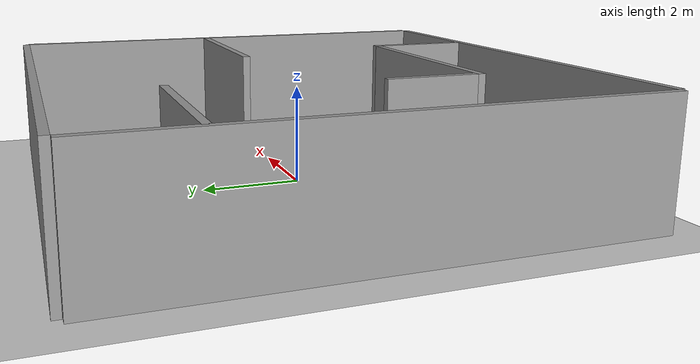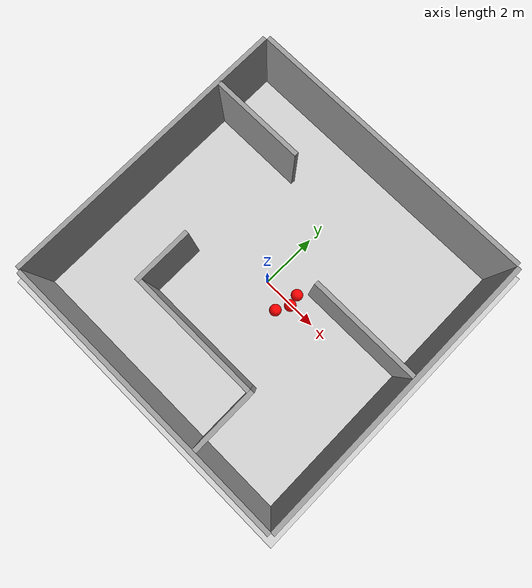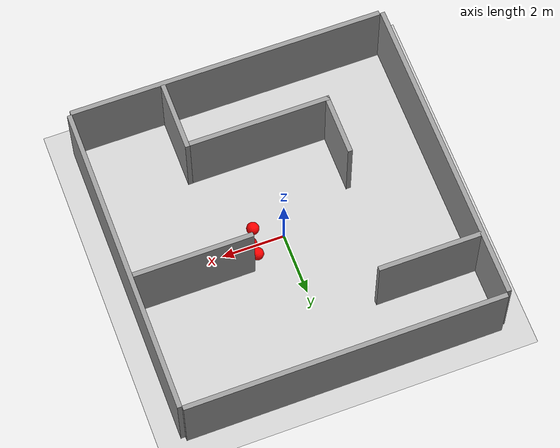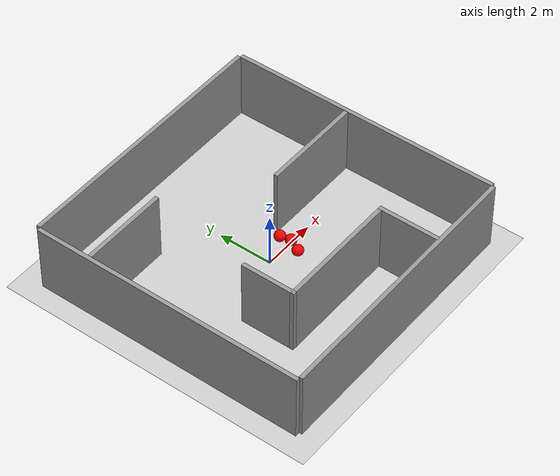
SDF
<sdf version="1.6">
 <world name="default">
  <model name="ground_plane">
   <static>1</static>
   <link name="link">
    <collision name="collision">
     <geometry><plane><normal>0 0 1</normal><size>100 100</size></plane></geometry>
     <surface><friction><ode><mu>100</mu><mu2>50</mu2></ode></friction></surface>
    </collision>
    <visual name="visual">
     <cast_shadows>0</cast_shadows>
     <geometry><plane><normal>0 0 1</normal><size>100 100</size></plane></geometry>
     <material>
      <script><uri>file://media/materials/scripts/gazebo.material</uri><name>Gazebo/Grey</name></script>
     </material>
    </visual>
   </link>
  </model>
  <light name="sun" type="directional">
   <pose>0 0 10 0 -0 0</pose>
   <diffuse>0.8 0.8 0.8 1</diffuse>
   <specular>0.1 0.1 0.1 1</specular>
   <attenuation>
    <range>1000</range>
    <constant>0.9</constant>
    <linear>0.01</linear>
    <quadratic>0.001</quadratic>
   </attenuation>
   <direction>-0.5 0.5 -1</direction>
  </light>
  <gravity>0 0 -9.8</gravity>
  <magnetic_field>6e-06 2.3e-05 -4.2e-05</magnetic_field>
  <atmosphere type="adiabatic"/>
  <physics name="default_physics" default="0" type="ode">
   <max_step_size>0.001</max_step_size>
   <real_time_factor>1</real_time_factor>
   <real_time_update_rate>1000</real_time_update_rate>
  </physics>
  <scene><ambient>0.4 0.4 0.4 1</ambient><background>0.7 0.7 0.7 1</background><shadows>1</shadows></scene>
  <spherical_coordinates>
   <surface_model>EARTH_WGS84</surface_model>
   <latitude_deg>0</latitude_deg>
   <longitude_deg>0</longitude_deg>
   <elevation>0</elevation>
   <heading_deg>0</heading_deg>
  </spherical_coordinates>
  <model name="project_maze.maze">
   <pose>-0.02178 0.067853 0 0 -0 0</pose>
   <link name="Wall_15">
    <collision name="Wall_15_Collision">
     <geometry><box><size>10 0.15 2.5</size></box></geometry>
     <pose>0 0 1.25 0 -0 0</pose>
    </collision>
    <visual name="Wall_15_Visual">
     <pose>0 0 1.25 0 -0 0</pose>
     <geometry><box><size>10 0.15 2.5</size></box></geometry>
     <material>
      <script><uri>file://media/materials/scripts/gazebo.material</uri><name>Gazebo/Grey</name></script>
      <ambient>1 1 1 1</ambient>
     </material>
    </visual>
    <pose>-5.07243 -0.026452 0 0 0 -1.5708</pose>
   </link>
   <link name="Wall_17">
    <collision name="Wall_17_Collision">
     <geometry><box><size>10 0.15 2.5</size></box></geometry>
     <pose>0 0 1.25 0 -0 0</pose>
    </collision>
    <visual name="Wall_17_Visual">
     <pose>0 0 1.25 0 -0 0</pose>
     <geometry><box><size>10 0.15 2.5</size></box></geometry>
     <material>
      <script><uri>file://media/materials/scripts/gazebo.material</uri><name>Gazebo/Grey</name></script>
      <ambient>1 1 1 1</ambient>
     </material>
    </visual>
    <pose>0.004274 5.05532 0 0 -0 3.14159</pose>
   </link>
   <link name="Wall_19">
    <collision name="Wall_19_Collision">
     <geometry><box><size>10 0.15 2.5</size></box></geometry>
     <pose>0 0 1.25 0 -0 0</pose>
    </collision>
    <visual name="Wall_19_Visual">
     <pose>0 0 1.25 0 -0 0</pose>
     <geometry><box><size>10 0.15 2.5</size></box></geometry>
     <material>
      <script><uri>file://media/materials/scripts/gazebo.material</uri><name>Gazebo/Grey</name></script>
      <ambient>1 1 1 1</ambient>
     </material>
    </visual>
    <pose>5.07243 0.004852 0 0 -0 1.5708</pose>
   </link>
   <link name="Wall_21">
    <collision name="Wall_21_Collision">
     <geometry><box><size>10 0.15 2.5</size></box></geometry>
     <pose>0 0 1.25 0 -0 0</pose>
    </collision>
    <visual name="Wall_21_Visual">
     <pose>0 0 1.25 0 -0 0</pose>
     <geometry><box><size>10 0.15 2.5</size></box></geometry>
     <material>
      <script><uri>file://media/materials/scripts/gazebo.material</uri><name>Gazebo/Grey</name></script>
      <ambient>1 1 1 1</ambient>
     </material>
    </visual>
    <pose>0.021453 -5.05532 0 0 -0 0</pose>
   </link>
   <link name="Wall_23">
    <collision name="Wall_23_Collision">
     <geometry><box><size>3.25 0.15 2.5</size></box></geometry>
     <pose>0 0 1.25 0 -0 0</pose>
    </collision>
    <visual name="Wall_23_Visual">
     <pose>0 0 1.25 0 -0 0</pose>
     <geometry><box><size>3.25 0.15 2.5</size></box></geometry>
     <material>
      <script><uri>file://media/materials/scripts/gazebo.material</uri><name>Gazebo/Grey</name></script>
      <ambient>1 1 1 1</ambient>
     </material>
    </visual>
    <pose>-3.40675 2.97794 0 0 -0 0</pose>
   </link>
   <link name="Wall_28">
    <collision name="Wall_28_Collision">
     <geometry><box><size>2.25 0.15 2.5</size></box></geometry>
     <pose>0 0 1.25 0 -0 0</pose>
    </collision>
    <visual name="Wall_28_Visual">
     <pose>0 0 1.25 0 -0 0</pose>
     <geometry><box><size>2.25 0.15 2.5</size></box></geometry>
     <material>
      <script><uri>file://media/materials/scripts/gazebo.material</uri><name>Gazebo/Grey</name></script>
      <ambient>1 1 1 1</ambient>
     </material>
    </visual>
    <pose>2.09231 -3.87232 0 0 -0 1.5708</pose>
   </link>
   <link name="Wall_30">
    <collision name="Wall_30_Collision">
     <geometry><box><size>4.5 0.15 2.5</size></box></geometry>
     <pose>0 0 1.25 0 -0 0</pose>
    </collision>
    <visual name="Wall_30_Visual">
     <pose>0 0 1.25 0 -0 0</pose>
     <geometry><box><size>4.5 0.15 2.5</size></box></geometry>
     <material>
      <script><uri>file://media/materials/scripts/gazebo.material</uri><name>Gazebo/Grey</name></script>
      <ambient>1 1 1 1</ambient>
     </material>
    </visual>
    <pose>-0.233543 -2.82458 0 0 -0 3.14159</pose>
   </link>
   <link name="Wall_32">
    <collision name="Wall_32_Collision">
     <geometry><box><size>2 0.15 2.5</size></box></geometry>
     <pose>0 0 1.25 0 -0 0</pose>
    </collision>
    <visual name="Wall_32_Visual">
     <pose>0 0 1.25 0 -0 0</pose>
     <geometry><box><size>2 0.15 2.5</size></box></geometry>
     <material>
      <script><uri>file://media/materials/scripts/gazebo.material</uri><name>Gazebo/Grey</name></script>
      <ambient>1 1 1 1</ambient>
     </material>
    </visual>
    <pose>-2.40854 -1.89958 0 0 -0 1.5708</pose>
   </link>
   <link name="Wall_34">
    <collision name="Wall_34_Collision">
     <geometry><box><size>3.75 0.15 2.5</size></box></geometry>
     <pose>0 0 1.25 0 -0 0</pose>
    </collision>
    <visual name="Wall_34_Visual">
     <pose>0 0 1.25 0 -0 0</pose>
     <geometry><box><size>3.75 0.15 2.5</size></box></geometry>
     <material>
      <script><uri>file://media/materials/scripts/gazebo.material</uri><name>Gazebo/Grey</name></script>
      <ambient>1 1 1 1</ambient>
     </material>
    </visual>
    <pose>3.11971 0.649212 0 0 -0 0</pose>
   </link>
   <static>1</static>
  </model>
  <model name="red_ball_2">
   <link name="link_0">
    <inertial>
     <mass>1</mass>
     <inertia><ixx>0</ixx><ixy>0</ixy><ixz>0</ixz><iyy>0</iyy><iyz>0</iyz><izz>0</izz></inertia>
     <pose>0 0.06 0 0 -0 0</pose>
    </inertial>
    <visual name="visual">
     <geometry><sphere><radius>0.2</radius></sphere></geometry>
     <material>
      <lighting>1</lighting>
      <script><uri>file://media/materials/scripts/gazebo.material</uri><name>Gazebo/Grey</name></script>
      <ambient>1 0 0 1</ambient>
      <diffuse>1 0 0 1</diffuse>
      <specular>1 0 0 1</specular>
      <emissive>1 0 0 1</emissive>
      <shader type="vertex"><normal_map>__default__</normal_map></shader>
     </material>
    </visual>
    <collision name="collision">
     <geometry><sphere><radius>0.2</radius></sphere></geometry>
     <surface>
      <friction>
       <ode><mu>1</mu><mu2>1</mu2><fdir1>0 0 0</fdir1><slip1>0</slip1><slip2>0</slip2></ode>
       <torsional>
        <coefficient>1</coefficient>
        <patch_radius>0</patch_radius>
        <surface_radius>0</surface_radius>
        <use_patch_radius>1</use_patch_radius>
        <ode><slip>0</slip></ode>
       </torsional>
      </friction>
      <bounce><restitution_coefficient>0</restitution_coefficient><threshold>1e+06</threshold></bounce>
      <contact>
       <collide_without_contact>0</collide_without_contact>
       <collide_without_contact_bitmask>1</collide_without_contact_bitmask>
       <collide_bitmask>1</collide_bitmask>
       <ode>
        <soft_cfm>0</soft_cfm>
        <soft_erp>0.2</soft_erp>
        <kp>1e+13</kp>
        <kd>1</kd>
        <max_vel>0.01</max_vel>
        <min_depth>0</min_depth>
       </ode>
       <bullet>
        <split_impulse>1</split_impulse>
        <split_impulse_penetration_threshold>-0.01</split_impulse_penetration_threshold>
        <soft_cfm>0</soft_cfm>
        <soft_erp>0.2</soft_erp>
        <kp>1e+13</kp>
        <kd>1</kd>
       </bullet>
      </contact>
     </surface>
    </collision>
   </link>
   <static>0</static>
   <pose>0.989962 0.353567 0.2 -1.75269 0.01559 0.051728</pose>
  </model>
  <model name="red_ball">
   <link name="link_0">
    <inertial>
     <mass>1</mass>
     <inertia><ixx>0</ixx><ixy>0</ixy><ixz>0</ixz><iyy>0</iyy><iyz>0</iyz><izz>0</izz></inertia>
     <pose>0 0.06 0 0 -0 0</pose>
    </inertial>
    <visual name="visual">
     <geometry><sphere><radius>0.2</radius></sphere></geometry>
     <material>
      <lighting>1</lighting>
      <script><uri>file://media/materials/scripts/gazebo.material</uri><name>Gazebo/Grey</name></script>
      <ambient>1 0 0 1</ambient>
      <diffuse>1 0 0 1</diffuse>
      <specular>1 0 0 1</specular>
      <emissive>1 0 0 1</emissive>
      <shader type="vertex"><normal_map>__default__</normal_map></shader>
     </material>
    </visual>
    <collision name="collision">
     <geometry><sphere><radius>0.2</radius></sphere></geometry>
     <surface>
      <friction>
       <ode><mu>1</mu><mu2>1</mu2><fdir1>0 0 0</fdir1><slip1>0</slip1><slip2>0</slip2></ode>
       <torsional>
        <coefficient>1</coefficient>
        <patch_radius>0</patch_radius>
        <surface_radius>0</surface_radius>
        <use_patch_radius>1</use_patch_radius>
        <ode><slip>0</slip></ode>
       </torsional>
      </friction>
      <bounce><restitution_coefficient>0</restitution_coefficient><threshold>1e+06</threshold></bounce>
      <contact>
       <collide_without_contact>0</collide_without_contact>
       <collide_without_contact_bitmask>1</collide_without_contact_bitmask>
       <collide_bitmask>1</collide_bitmask>
       <ode>
        <soft_cfm>0</soft_cfm>
        <soft_erp>0.2</soft_erp>
        <kp>1e+13</kp>
        <kd>1</kd>
        <max_vel>0.01</max_vel>
        <min_depth>0</min_depth>
       </ode>
       <bullet>
        <split_impulse>1</split_impulse>
        <split_impulse_penetration_threshold>-0.01</split_impulse_penetration_threshold>
        <soft_cfm>0</soft_cfm>
        <soft_erp>0.2</soft_erp>
        <kp>1e+13</kp>
        <kd>1</kd>
       </bullet>
      </contact>
     </surface>
    </collision>
   </link>
   <static>0</static>
   <pose>1.06797 -0.038752 0.199997 -1.62199 0.120066 0.056537</pose>
  </model>
  <model name="red_ball_3">
   <link name="link_0">
    <inertial>
     <mass>1</mass>
     <inertia><ixx>0</ixx><ixy>0</ixy><ixz>0</ixz><iyy>0</iyy><iyz>0</iyz><izz>0</izz></inertia>
     <pose>0 0.06 0 0 -0 0</pose>
    </inertial>
    <visual name="visual">
     <geometry><sphere><radius>0.2</radius></sphere></geometry>
     <material>
      <lighting>1</lighting>
      <script><uri>file://media/materials/scripts/gazebo.material</uri><name>Gazebo/Grey</name></script>
      <ambient>1 0 0 1</ambient>
      <diffuse>1 0 0 1</diffuse>
      <specular>1 0 0 1</specular>
      <emissive>1 0 0 1</emissive>
      <shader type="vertex"><normal_map>__default__</normal_map></shader>
     </material>
    </visual>
    <collision name="collision">
     <geometry><sphere><radius>0.2</radius></sphere></geometry>
     <surface>
      <friction>
       <ode><mu>1</mu><mu2>1</mu2><fdir1>0 0 0</fdir1><slip1>0</slip1><slip2>0</slip2></ode>
       <torsional>
        <coefficient>1</coefficient>
        <patch_radius>0</patch_radius>
        <surface_radius>0</surface_radius>
        <use_patch_radius>1</use_patch_radius>
        <ode><slip>0</slip></ode>
       </torsional>
      </friction>
      <bounce><restitution_coefficient>0</restitution_coefficient><threshold>1e+06</threshold></bounce>
      <contact>
       <collide_without_contact>0</collide_without_contact>
       <collide_without_contact_bitmask>1</collide_without_contact_bitmask>
       <collide_bitmask>1</collide_bitmask>
       <ode>
        <soft_cfm>0</soft_cfm>
        <soft_erp>0.2</soft_erp>
        <kp>1e+13</kp>
        <kd>1</kd>
        <max_vel>0.01</max_vel>
        <min_depth>0</min_depth>
       </ode>
       <bullet>
        <split_impulse>1</split_impulse>
        <split_impulse_penetration_threshold>-0.01</split_impulse_penetration_threshold>
        <soft_cfm>0</soft_cfm>
        <soft_erp>0.2</soft_erp>
        <kp>1e+13</kp>
        <kd>1</kd>
       </bullet>
      </contact>
     </surface>
    </collision>
   </link>
   <static>0</static>
   <pose>0.831358 -0.486987 0.2 -1.84838 0 0</pose>
  </model>
 </world>
</sdf>
